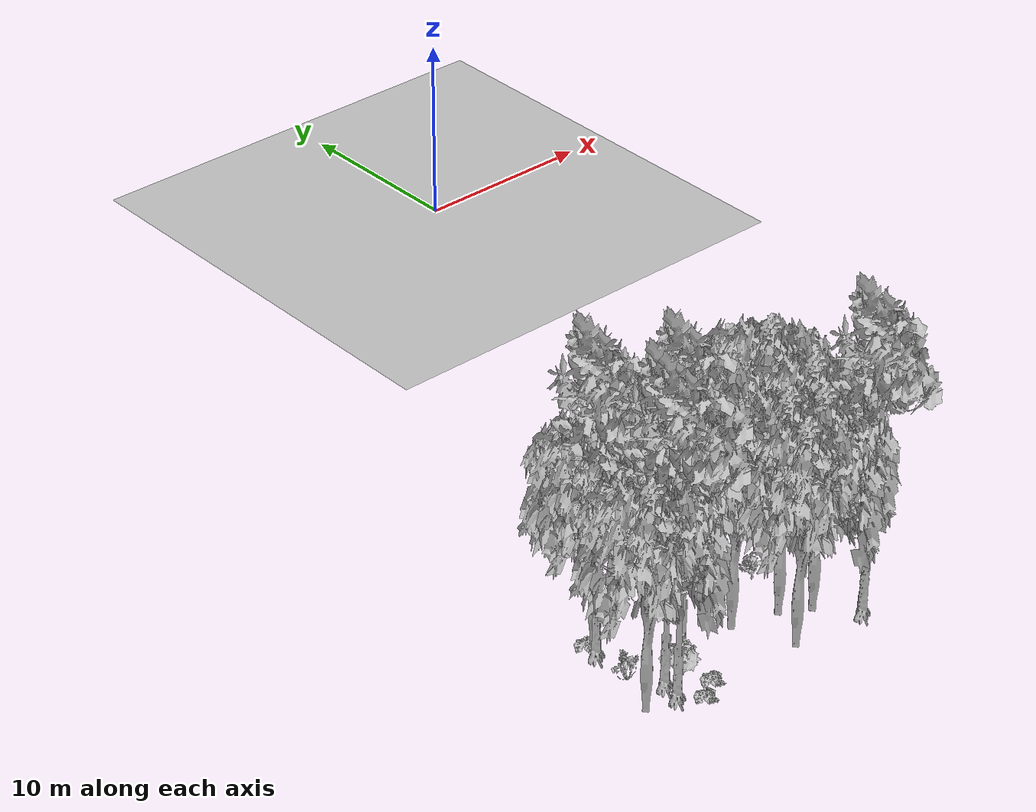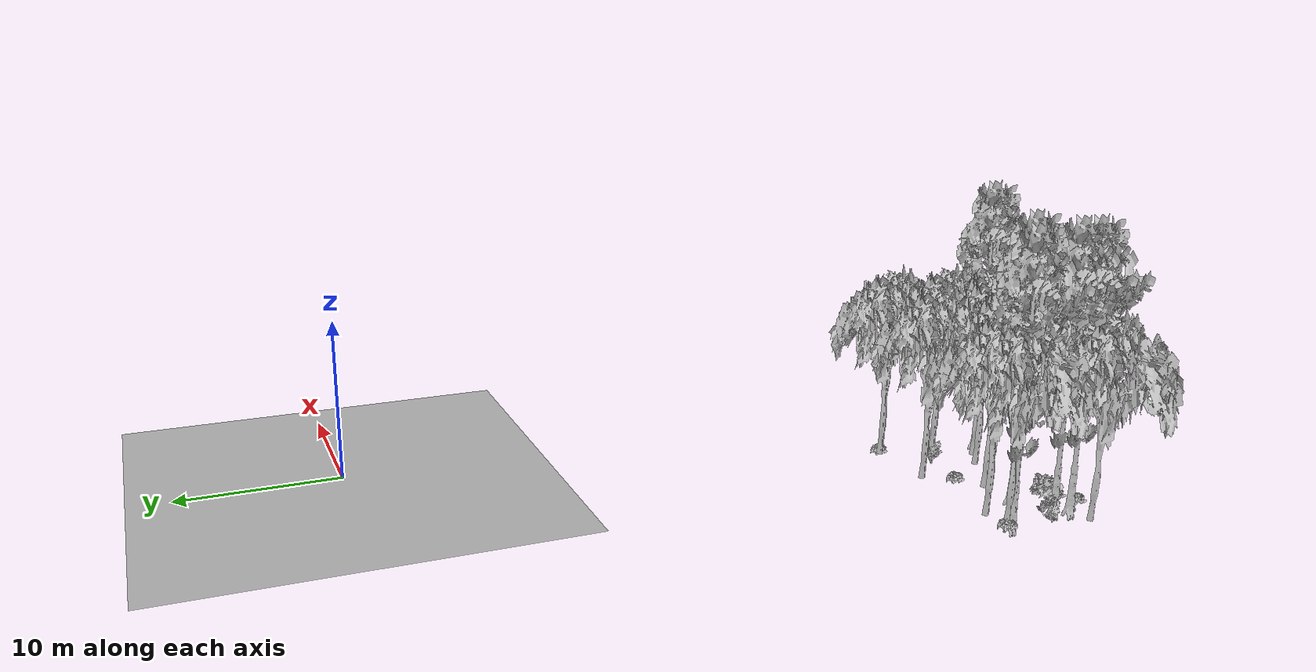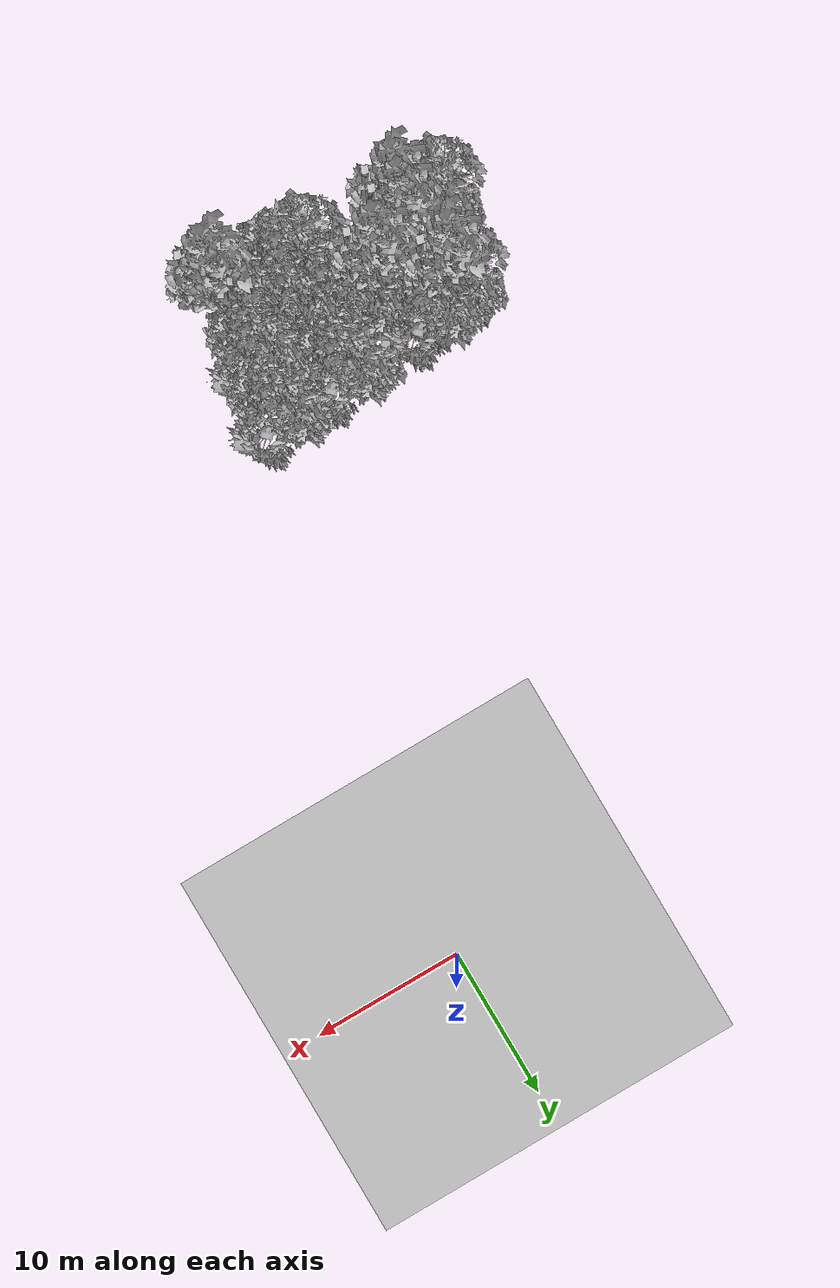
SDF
<sdf version="1.7">
 <world name="default">
  <model name="ground_plane">
   <static>1</static>
   <link name="link">
    <collision name="collision">
     <pose>-50 0 0 0 -0 0</pose>
     <geometry><plane><normal>0 0 1</normal><size>80 80</size></plane></geometry>
     <surface><contact><ode><min_depth>0.01</min_depth><max_vel>0</max_vel></ode></contact></surface>
    </collision>
    <visual name="grass">
     <cast_shadows>0</cast_shadows>
     <geometry>
      <mesh>
       <scale>0.46714285714285714 0.46714285714285714 0.1</scale>
       <uri>file://grass_plane/meshes/grass_plane.dae</uri>
      </mesh>
     </geometry>
    </visual>
   </link>
  </model>
  <model name="Tree 89">
   <static>1</static>
   <pose>-8.897551550923662 -36.48580299808246 0 1.57079 -0 0</pose>
   <link name="link">
    <collision name="collision">
     <geometry><mesh><scale>3.5 5 3.5</scale><uri>model://tree_2/meshes/tree_2.obj</uri></mesh></geometry>
    </collision>
    <visual name="visual">
     <geometry><mesh><scale>3.5 5 3.5</scale><uri>model://tree_2/meshes/tree_2.obj</uri></mesh></geometry>
    </visual>
   </link>
  </model>
  <model name="Tree 90">
   <static>1</static>
   <pose>-19.131505621114158 -38.852333898387634 0 1.57079 -0 0</pose>
   <link name="link">
    <collision name="collision">
     <geometry><mesh><scale>3.5 5 3.5</scale><uri>model://tree_9/meshes/tree_9.obj</uri></mesh></geometry>
    </collision>
    <visual name="visual">
     <geometry><mesh><scale>3.5 5 3.5</scale><uri>model://tree_9/meshes/tree_9.obj</uri></mesh></geometry>
    </visual>
   </link>
  </model>
  <model name="Tree 160">
   <static>1</static>
   <pose>-14.126202652417842 -37.07474689186303 0 1.57079 -0 0</pose>
   <link name="link">
    <collision name="collision">
     <geometry><mesh><scale>3.5 5 3.5</scale><uri>model://tree_2/meshes/tree_2.obj</uri></mesh></geometry>
    </collision>
    <visual name="visual">
     <geometry><mesh><scale>3.5 5 3.5</scale><uri>model://tree_2/meshes/tree_2.obj</uri></mesh></geometry>
    </visual>
   </link>
  </model>
  <model name="Tree 198">
   <static>1</static>
   <pose>-12.871589157912119 -39.88849968489416 0 1.57079 -0 0</pose>
   <link name="link">
    <collision name="collision">
     <geometry><mesh><scale>3.5 5 3.5</scale><uri>model://tree_2/meshes/tree_2.obj</uri></mesh></geometry>
    </collision>
    <visual name="visual">
     <geometry><mesh><scale>3.5 5 3.5</scale><uri>model://tree_2/meshes/tree_2.obj</uri></mesh></geometry>
    </visual>
   </link>
  </model>
  <model name="Tree 220">
   <static>1</static>
   <pose>-18.341251294359708 -33.66033011601499 0 1.57079 -0 0</pose>
   <link name="link">
    <collision name="collision">
     <geometry><mesh><scale>3.5 5 3.5</scale><uri>model://tree_2/meshes/tree_2.obj</uri></mesh></geometry>
    </collision>
    <visual name="visual">
     <geometry><mesh><scale>3.5 5 3.5</scale><uri>model://tree_2/meshes/tree_2.obj</uri></mesh></geometry>
    </visual>
   </link>
  </model>
  <model name="Tree 240">
   <static>1</static>
   <pose>-21.035728234099725 -38.786046068290986 0 1.57079 -0 0</pose>
   <link name="link">
    <collision name="collision">
     <geometry><mesh><scale>3.5 5 3.5</scale><uri>model://tree_2/meshes/tree_2.obj</uri></mesh></geometry>
    </collision>
    <visual name="visual">
     <geometry><mesh><scale>3.5 5 3.5</scale><uri>model://tree_2/meshes/tree_2.obj</uri></mesh></geometry>
    </visual>
   </link>
  </model>
  <model name="Tree 263">
   <static>1</static>
   <pose>-18.93118757686194 -37.864763185843564 0 1.57079 -0 0</pose>
   <link name="link">
    <collision name="collision">
     <geometry><mesh><scale>3.5 5 3.5</scale><uri>model://tree_9/meshes/tree_9.obj</uri></mesh></geometry>
    </collision>
    <visual name="visual">
     <geometry><mesh><scale>3.5 5 3.5</scale><uri>model://tree_9/meshes/tree_9.obj</uri></mesh></geometry>
    </visual>
   </link>
  </model>
  <model name="Tree 288">
   <static>1</static>
   <pose>-14.979269999907128 -36.035662743414804 0 1.57079 -0 0</pose>
   <link name="link">
    <collision name="collision">
     <geometry><mesh><scale>3.5 5 3.5</scale><uri>model://tree_2/meshes/tree_2.obj</uri></mesh></geometry>
    </collision>
    <visual name="visual">
     <geometry><mesh><scale>3.5 5 3.5</scale><uri>model://tree_2/meshes/tree_2.obj</uri></mesh></geometry>
    </visual>
   </link>
  </model>
  <model name="Tree 376">
   <static>1</static>
   <pose>-8.576279568948522 -39.99511914659956 0 1.57079 -0 0</pose>
   <link name="link">
    <collision name="collision">
     <geometry><mesh><scale>3.5 5 3.5</scale><uri>model://tree_9/meshes/tree_9.obj</uri></mesh></geometry>
    </collision>
    <visual name="visual">
     <geometry><mesh><scale>3.5 5 3.5</scale><uri>model://tree_9/meshes/tree_9.obj</uri></mesh></geometry>
    </visual>
   </link>
  </model>
  <model name="Tree 400">
   <static>1</static>
   <pose>-16.700674797141453 -36.59037121127056 0 1.57079 -0 0</pose>
   <link name="link">
    <collision name="collision">
     <geometry><mesh><scale>3.5 5 3.5</scale><uri>model://tree_9/meshes/tree_9.obj</uri></mesh></geometry>
    </collision>
    <visual name="visual">
     <geometry><mesh><scale>3.5 5 3.5</scale><uri>model://tree_9/meshes/tree_9.obj</uri></mesh></geometry>
    </visual>
   </link>
  </model>
  <model name="Tree 438">
   <static>1</static>
   <pose>-19.744510322726544 -34.05301217059801 0 1.57079 -0 0</pose>
   <link name="link">
    <collision name="collision">
     <geometry><mesh><scale>3.5 5 3.5</scale><uri>model://tree_2/meshes/tree_2.obj</uri></mesh></geometry>
    </collision>
    <visual name="visual">
     <geometry><mesh><scale>3.5 5 3.5</scale><uri>model://tree_2/meshes/tree_2.obj</uri></mesh></geometry>
    </visual>
   </link>
  </model>
  <model name="Tree 476">
   <static>1</static>
   <pose>-8.202134644336937 -33.043821907066715 0 1.57079 -0 0</pose>
   <link name="link">
    <collision name="collision">
     <geometry><mesh><scale>3.5 5 3.5</scale><uri>model://tree_2/meshes/tree_2.obj</uri></mesh></geometry>
    </collision>
    <visual name="visual">
     <geometry><mesh><scale>3.5 5 3.5</scale><uri>model://tree_2/meshes/tree_2.obj</uri></mesh></geometry>
    </visual>
   </link>
  </model>
  <model name="Tree 518">
   <static>1</static>
   <pose>-11.797012018949559 -37.72844071728464 0 1.57079 -0 0</pose>
   <link name="link">
    <collision name="collision">
     <geometry><mesh><scale>3.5 5 3.5</scale><uri>model://tree_2/meshes/tree_2.obj</uri></mesh></geometry>
    </collision>
    <visual name="visual">
     <geometry><mesh><scale>3.5 5 3.5</scale><uri>model://tree_2/meshes/tree_2.obj</uri></mesh></geometry>
    </visual>
   </link>
  </model>
  <model name="Tree 539">
   <static>1</static>
   <pose>-12.508615264283971 -33.314739621378905 0 1.57079 -0 0</pose>
   <link name="link">
    <collision name="collision">
     <geometry><mesh><scale>3.5 5 3.5</scale><uri>model://tree_2/meshes/tree_2.obj</uri></mesh></geometry>
    </collision>
    <visual name="visual">
     <geometry><mesh><scale>3.5 5 3.5</scale><uri>model://tree_2/meshes/tree_2.obj</uri></mesh></geometry>
    </visual>
   </link>
  </model>
  <model name="Tree 566">
   <static>1</static>
   <pose>-10.420461853100328 -38.54112591492281 0 1.57079 -0 0</pose>
   <link name="link">
    <collision name="collision">
     <geometry><mesh><scale>3.5 5 3.5</scale><uri>model://tree_2/meshes/tree_2.obj</uri></mesh></geometry>
    </collision>
    <visual name="visual">
     <geometry><mesh><scale>3.5 5 3.5</scale><uri>model://tree_2/meshes/tree_2.obj</uri></mesh></geometry>
    </visual>
   </link>
  </model>
  <model name="Tree 589">
   <static>1</static>
   <pose>-19.747466180105988 -34.30692383071333 0 1.57079 -0 0</pose>
   <link name="link">
    <collision name="collision">
     <geometry><mesh><scale>3.5 5 3.5</scale><uri>model://tree_9/meshes/tree_9.obj</uri></mesh></geometry>
    </collision>
    <visual name="visual">
     <geometry><mesh><scale>3.5 5 3.5</scale><uri>model://tree_9/meshes/tree_9.obj</uri></mesh></geometry>
    </visual>
   </link>
  </model>
  <model name="Bush 21">
   <static>1</static>
   <pose>-7.750817705479783 -33.24135868741087 0 1.57079 -0 0</pose>
   <link name="link">
    <collision name="collision">
     <geometry><mesh><scale>2 2 2</scale><uri>model://bush_2/meshes/bush_2.obj</uri></mesh></geometry>
     <surface><contact><collide_without_contact>false</collide_without_contact></contact></surface>
    </collision>
    <visual name="visual">
     <geometry><mesh><scale>2 2 2</scale><uri>model://bush_2/meshes/bush_2.obj</uri></mesh></geometry>
    </visual>
   </link>
  </model>
  <model name="Bush 49">
   <static>1</static>
   <pose>-20.087192783666517 -36.665988932893505 0 1.57079 -0 0</pose>
   <link name="link">
    <collision name="collision">
     <geometry><mesh><scale>2 2 2</scale><uri>model://bush_4/meshes/bush_4.obj</uri></mesh></geometry>
     <surface><contact><collide_without_contact>false</collide_without_contact></contact></surface>
    </collision>
    <visual name="visual">
     <geometry><mesh><scale>2 2 2</scale><uri>model://bush_4/meshes/bush_4.obj</uri></mesh></geometry>
    </visual>
   </link>
  </model>
  <model name="Bush 135">
   <static>1</static>
   <pose>-18.073372669991503 -38.08219750439548 0 1.57079 -0 0</pose>
   <link name="link">
    <collision name="collision">
     <geometry><mesh><scale>2 2 2</scale><uri>model://bush_1/meshes/bush_1.obj</uri></mesh></geometry>
     <surface><contact><collide_without_contact>false</collide_without_contact></contact></surface>
    </collision>
    <visual name="visual">
     <geometry><mesh><scale>2 2 2</scale><uri>model://bush_1/meshes/bush_1.obj</uri></mesh></geometry>
    </visual>
   </link>
  </model>
  <model name="Bush 187">
   <static>1</static>
   <pose>-17.433687856862225 -39.295905324830294 0 1.57079 -0 0</pose>
   <link name="link">
    <collision name="collision">
     <geometry><mesh><scale>2 2 2</scale><uri>model://bush_2/meshes/bush_2.obj</uri></mesh></geometry>
     <surface><contact><collide_without_contact>false</collide_without_contact></contact></surface>
    </collision>
    <visual name="visual">
     <geometry><mesh><scale>2 2 2</scale><uri>model://bush_2/meshes/bush_2.obj</uri></mesh></geometry>
    </visual>
   </link>
  </model>
  <model name="Bush 199">
   <static>1</static>
   <pose>-13.346493030873294 -35.12586142074635 0 1.57079 -0 0</pose>
   <link name="link">
    <collision name="collision">
     <geometry><mesh><scale>2 2 2</scale><uri>model://bush_2/meshes/bush_2.obj</uri></mesh></geometry>
     <surface><contact><collide_without_contact>false</collide_without_contact></contact></surface>
    </collision>
    <visual name="visual">
     <geometry><mesh><scale>2 2 2</scale><uri>model://bush_2/meshes/bush_2.obj</uri></mesh></geometry>
    </visual>
   </link>
  </model>
  <model name="Bush 296">
   <static>1</static>
   <pose>-10.754207445188928 -35.09635964292852 0 1.57079 -0 0</pose>
   <link name="link">
    <collision name="collision">
     <geometry><mesh><scale>2 2 2</scale><uri>model://bush_0/meshes/bush_0.obj</uri></mesh></geometry>
     <surface><contact><collide_without_contact>false</collide_without_contact></contact></surface>
    </collision>
    <visual name="visual">
     <geometry><mesh><scale>2 2 2</scale><uri>model://bush_0/meshes/bush_0.obj</uri></mesh></geometry>
    </visual>
   </link>
  </model>
  <model name="Bush 323">
   <static>1</static>
   <pose>-19.980151121451605 -33.859070236611146 0 1.57079 -0 0</pose>
   <link name="link">
    <collision name="collision">
     <geometry><mesh><scale>2 2 2</scale><uri>model://bush_2/meshes/bush_2.obj</uri></mesh></geometry>
     <surface><contact><collide_without_contact>false</collide_without_contact></contact></surface>
    </collision>
    <visual name="visual">
     <geometry><mesh><scale>2 2 2</scale><uri>model://bush_2/meshes/bush_2.obj</uri></mesh></geometry>
    </visual>
   </link>
  </model>
  <model name="Bush 404">
   <static>1</static>
   <pose>-18.46451171872736 -39.94737070642554 0 1.57079 -0 0</pose>
   <link name="link">
    <collision name="collision">
     <geometry><mesh><scale>2 2 2</scale><uri>model://bush_2/meshes/bush_2.obj</uri></mesh></geometry>
     <surface><contact><collide_without_contact>false</collide_without_contact></contact></surface>
    </collision>
    <visual name="visual">
     <geometry><mesh><scale>2 2 2</scale><uri>model://bush_2/meshes/bush_2.obj</uri></mesh></geometry>
    </visual>
   </link>
  </model>
 </world>
</sdf>
